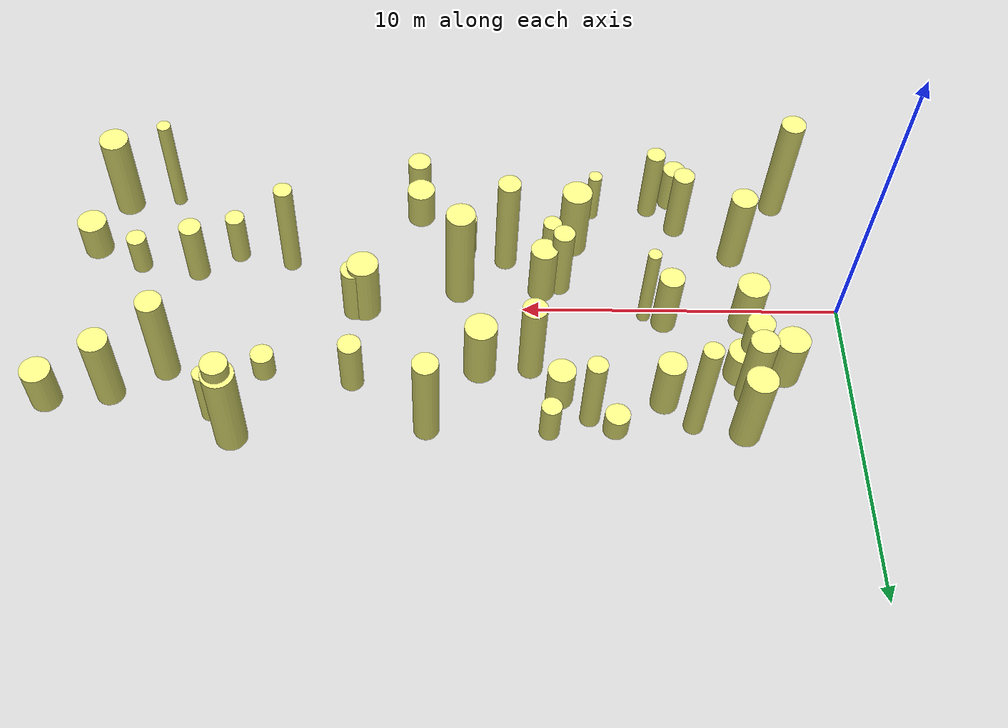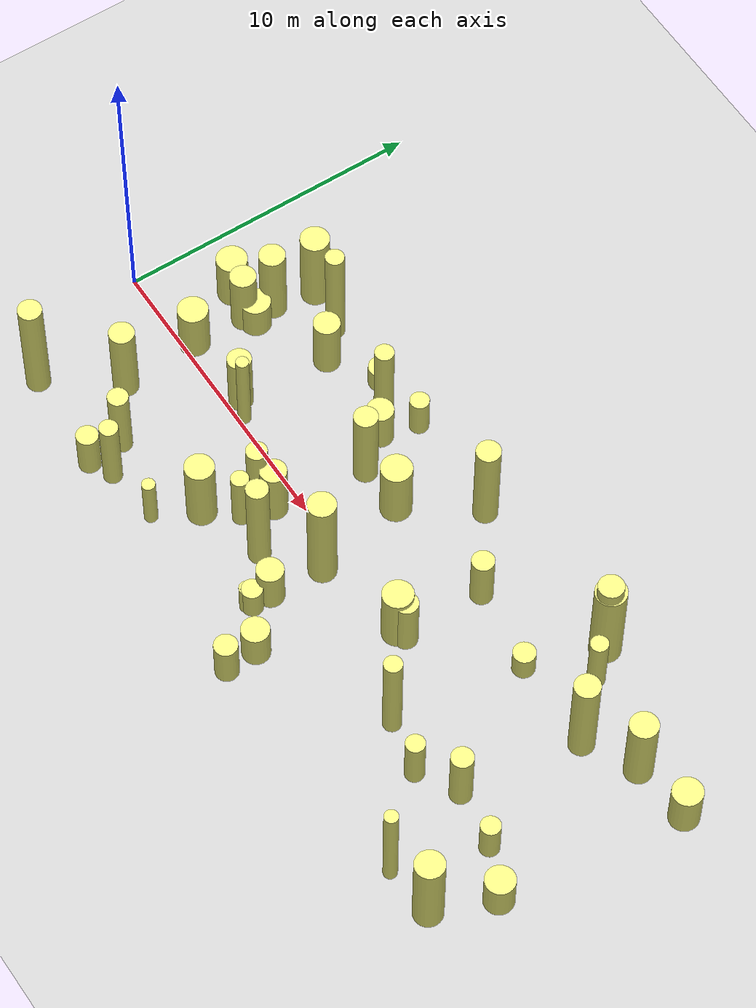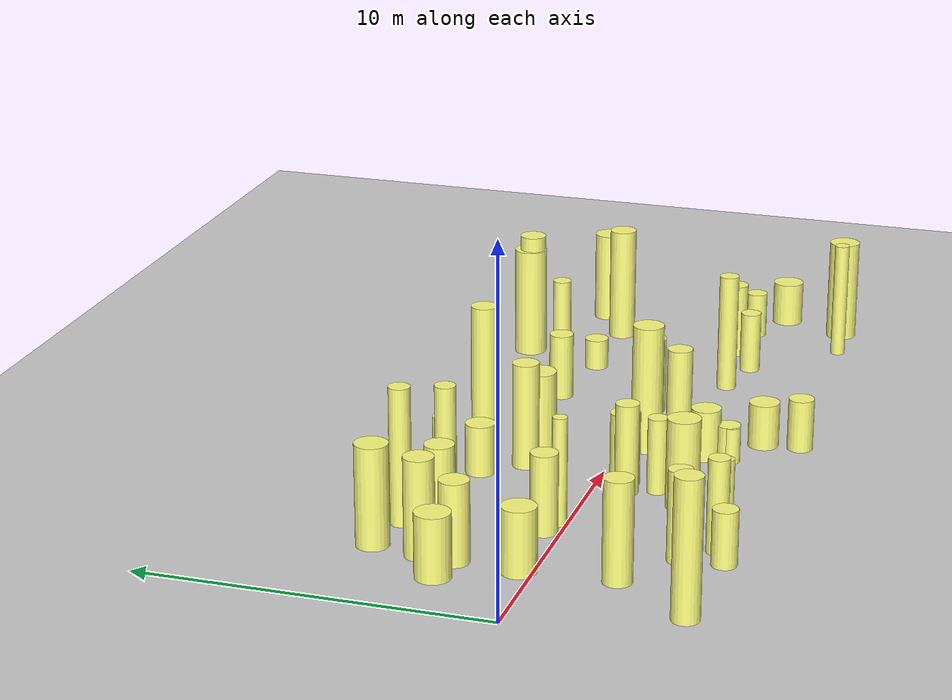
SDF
<sdf version="1.4">
 <world name="default">
  <include><uri>model://ground_plane</uri></include>
  <include><uri>model://sun</uri></include>
  <model name="forest">
   <static>true</static>
   <link name="cylinder1">
    <pose>8.066118839846212 4.0618754545201 1.4364087561074292 0 0 0</pose>
    <visual name="visual">
     <geometry>
      <cylinder><radius>0.30672156006113743</radius><length>2.8728175122148585</length></cylinder>
     </geometry>
     <material>
      <ambient>0.6 0.6 0.6 1</ambient>
      <diffuse>1 1 0.5 1</diffuse>
      <specular>0 0 0</specular>
      <emissive>0 0 0 1</emissive>
     </material>
    </visual>
    <collision name="collision">
     <geometry>
      <cylinder><radius>0.30672156006113743</radius><length>2.8728175122148585</length></cylinder>
     </geometry>
     <max_contacts>0</max_contacts>
    </collision>
   </link>
   <link name="cylinder3">
    <pose>3.170140923489946 -2.216576093013055 1.4581455485064332 0 0 0</pose>
    <visual name="visual">
     <geometry>
      <cylinder><radius>0.4053678825190724</radius><length>2.9162910970128664</length></cylinder>
     </geometry>
     <material>
      <ambient>0.6 0.6 0.6 1</ambient>
      <diffuse>1 1 0.5 1</diffuse>
      <specular>0 0 0</specular>
      <emissive>0 0 0 1</emissive>
     </material>
    </visual>
    <collision name="collision">
     <geometry>
      <cylinder><radius>0.4053678825190724</radius><length>2.9162910970128664</length></cylinder>
     </geometry>
     <max_contacts>0</max_contacts>
    </collision>
   </link>
   <link name="cylinder4">
    <pose>9.811674742614109 2.254812388897731 1.5549798884222428 0 0 0</pose>
    <visual name="visual">
     <geometry>
      <cylinder><radius>0.38145817483813893</radius><length>3.1099597768444855</length></cylinder>
     </geometry>
     <material>
      <ambient>0.6 0.6 0.6 1</ambient>
      <diffuse>1 1 0.5 1</diffuse>
      <specular>0 0 0</specular>
      <emissive>0 0 0 1</emissive>
     </material>
    </visual>
    <collision name="collision">
     <geometry>
      <cylinder><radius>0.38145817483813893</radius><length>3.1099597768444855</length></cylinder>
     </geometry>
     <max_contacts>0</max_contacts>
    </collision>
   </link>
   <link name="cylinder6">
    <pose>11.828730259959649 -3.240151185704457 0.5319828385935281 0 0 0</pose>
    <visual name="visual">
     <geometry>
      <cylinder><radius>0.2554180020215281</radius><length>1.0639656771870563</length></cylinder>
     </geometry>
     <material>
      <ambient>0.6 0.6 0.6 1</ambient>
      <diffuse>1 1 0.5 1</diffuse>
      <specular>0 0 0</specular>
      <emissive>0 0 0 1</emissive>
     </material>
    </visual>
    <collision name="collision">
     <geometry>
      <cylinder><radius>0.2554180020215281</radius><length>1.0639656771870563</length></cylinder>
     </geometry>
     <max_contacts>0</max_contacts>
    </collision>
   </link>
   <link name="cylinder11">
    <pose>15.0008586744622 -0.014582381675227296 1.1326069262630196 0 0 0</pose>
    <visual name="visual">
     <geometry>
      <cylinder><radius>0.4873311858263697</radius><length>2.2652138525260392</length></cylinder>
     </geometry>
     <material>
      <ambient>0.6 0.6 0.6 1</ambient>
      <diffuse>1 1 0.5 1</diffuse>
      <specular>0 0 0</specular>
      <emissive>0 0 0 1</emissive>
     </material>
    </visual>
    <collision name="collision">
     <geometry>
      <cylinder><radius>0.4873311858263697</radius><length>2.2652138525260392</length></cylinder>
     </geometry>
     <max_contacts>0</max_contacts>
    </collision>
   </link>
   <link name="cylinder12">
    <pose>5.735921058464587 -4.238797580088827 1.3454991109490377 0 0 0</pose>
    <visual name="visual">
     <geometry>
      <cylinder><radius>0.29776435941849366</radius><length>2.6909982218980755</length></cylinder>
     </geometry>
     <material>
      <ambient>0.6 0.6 0.6 1</ambient>
      <diffuse>1 1 0.5 1</diffuse>
      <specular>0 0 0</specular>
      <emissive>0 0 0 1</emissive>
     </material>
    </visual>
    <collision name="collision">
     <geometry>
      <cylinder><radius>0.29776435941849366</radius><length>2.6909982218980755</length></cylinder>
     </geometry>
     <max_contacts>0</max_contacts>
    </collision>
   </link>
   <link name="cylinder14">
    <pose>13.283649940602913 -3.8660855455151024 0.6704017006859668 0 0 0</pose>
    <visual name="visual">
     <geometry>
      <cylinder><radius>0.4441620345468562</radius><length>1.3408034013719337</length></cylinder>
     </geometry>
     <material>
      <ambient>0.6 0.6 0.6 1</ambient>
      <diffuse>1 1 0.5 1</diffuse>
      <specular>0 0 0</specular>
      <emissive>0 0 0 1</emissive>
     </material>
    </visual>
    <collision name="collision">
     <geometry>
      <cylinder><radius>0.4441620345468562</radius><length>1.3408034013719337</length></cylinder>
     </geometry>
     <max_contacts>0</max_contacts>
    </collision>
   </link>
   <link name="cylinder15">
    <pose>12.987337972857787 4.493687276730903 1.7412392908020857 0 0 0</pose>
    <visual name="visual">
     <geometry>
      <cylinder><radius>0.38889533113581276</radius><length>3.4824785816041715</length></cylinder>
     </geometry>
     <material>
      <ambient>0.6 0.6 0.6 1</ambient>
      <diffuse>1 1 0.5 1</diffuse>
      <specular>0 0 0</specular>
      <emissive>0 0 0 1</emissive>
     </material>
    </visual>
    <collision name="collision">
     <geometry>
      <cylinder><radius>0.38889533113581276</radius><length>3.4824785816041715</length></cylinder>
     </geometry>
     <max_contacts>0</max_contacts>
    </collision>
   </link>
   <link name="cylinder16">
    <pose>17.465234175828172 -1.820906253466669 1.7901525439202262 0 0 0</pose>
    <visual name="visual">
     <geometry>
      <cylinder><radius>0.28865827153307433</radius><length>3.5803050878404523</length></cylinder>
     </geometry>
     <material>
      <ambient>0.6 0.6 0.6 1</ambient>
      <diffuse>1 1 0.5 1</diffuse>
      <specular>0 0 0</specular>
      <emissive>0 0 0 1</emissive>
     </material>
    </visual>
    <collision name="collision">
     <geometry>
      <cylinder><radius>0.28865827153307433</radius><length>3.5803050878404523</length></cylinder>
     </geometry>
     <max_contacts>0</max_contacts>
    </collision>
   </link>
   <link name="cylinder18">
    <pose>18.850633381991997 4.760175011194956 1.896688940215597 0 0 0</pose>
    <visual name="visual">
     <geometry>
      <cylinder><radius>0.39927710213772893</radius><length>3.793377880431194</length></cylinder>
     </geometry>
     <material>
      <ambient>0.6 0.6 0.6 1</ambient>
      <diffuse>1 1 0.5 1</diffuse>
      <specular>0 0 0</specular>
      <emissive>0 0 0 1</emissive>
     </material>
    </visual>
    <collision name="collision">
     <geometry>
      <cylinder><radius>0.39927710213772893</radius><length>3.793377880431194</length></cylinder>
     </geometry>
     <max_contacts>0</max_contacts>
    </collision>
   </link>
   <link name="cylinder21">
    <pose>18.02866879839089 2.437116368702269 0.46491452243994297 0 0 0</pose>
    <visual name="visual">
     <geometry>
      <cylinder><radius>0.3569830298765556</radius><length>0.9298290448798859</length></cylinder>
     </geometry>
     <material>
      <ambient>0.6 0.6 0.6 1</ambient>
      <diffuse>1 1 0.5 1</diffuse>
      <specular>0 0 0</specular>
      <emissive>0 0 0 1</emissive>
     </material>
    </visual>
    <collision name="collision">
     <geometry>
      <cylinder><radius>0.3569830298765556</radius><length>0.9298290448798859</length></cylinder>
     </geometry>
     <max_contacts>0</max_contacts>
    </collision>
   </link>
   <link name="cylinder22">
    <pose>15.317636051968876 0.08138888489696594 1.0537577487184902 0 0 0</pose>
    <visual name="visual">
     <geometry>
      <cylinder><radius>0.3703493254064486</radius><length>2.1075154974369803</length></cylinder>
     </geometry>
     <material>
      <ambient>0.6 0.6 0.6 1</ambient>
      <diffuse>1 1 0.5 1</diffuse>
      <specular>0 0 0</specular>
      <emissive>0 0 0 1</emissive>
     </material>
    </visual>
    <collision name="collision">
     <geometry>
      <cylinder><radius>0.3703493254064486</radius><length>2.1075154974369803</length></cylinder>
     </geometry>
     <max_contacts>0</max_contacts>
    </collision>
   </link>
   <link name="cylinder25">
    <pose>11.895203911824616 -2.475094329204822 0.7576453206853451 0 0 0</pose>
    <visual name="visual">
     <geometry>
      <cylinder><radius>0.4295975941818696</radius><length>1.5152906413706901</length></cylinder>
     </geometry>
     <material>
      <ambient>0.6 0.6 0.6 1</ambient>
      <diffuse>1 1 0.5 1</diffuse>
      <specular>0 0 0</specular>
      <emissive>0 0 0 1</emissive>
     </material>
    </visual>
    <collision name="collision">
     <geometry>
      <cylinder><radius>0.4295975941818696</radius><length>1.5152906413706901</length></cylinder>
     </geometry>
     <max_contacts>0</max_contacts>
    </collision>
   </link>
   <link name="cylinder27">
    <pose>22.644880289418985 3.302533713791421 1.4079278390467205 0 0 0</pose>
    <visual name="visual">
     <geometry>
      <cylinder><radius>0.4429732584940284</radius><length>2.815855678093441</length></cylinder>
     </geometry>
     <material>
      <ambient>0.6 0.6 0.6 1</ambient>
      <diffuse>1 1 0.5 1</diffuse>
      <specular>0 0 0</specular>
      <emissive>0 0 0 1</emissive>
     </material>
    </visual>
    <collision name="collision">
     <geometry>
      <cylinder><radius>0.4429732584940284</radius><length>2.815855678093441</length></cylinder>
     </geometry>
     <max_contacts>0</max_contacts>
    </collision>
   </link>
   <link name="cylinder28">
    <pose>23.089459009583173 -4.303348235721679 1.5611952416324024 0 0 0</pose>
    <visual name="visual">
     <geometry>
      <cylinder><radius>0.45974052555895284</radius><length>3.122390483264805</length></cylinder>
     </geometry>
     <material>
      <ambient>0.6 0.6 0.6 1</ambient>
      <diffuse>1 1 0.5 1</diffuse>
      <specular>0 0 0</specular>
      <emissive>0 0 0 1</emissive>
     </material>
    </visual>
    <collision name="collision">
     <geometry>
      <cylinder><radius>0.45974052555895284</radius><length>3.122390483264805</length></cylinder>
     </geometry>
     <max_contacts>0</max_contacts>
    </collision>
   </link>
   <link name="cylinder29">
    <pose>2.9944841728109957 0.37837275598541176 0.9362592487458747 0 0 0</pose>
    <visual name="visual">
     <geometry>
      <cylinder><radius>0.48791380645112986</radius><length>1.8725184974917495</length></cylinder>
     </geometry>
     <material>
      <ambient>0.6 0.6 0.6 1</ambient>
      <diffuse>1 1 0.5 1</diffuse>
      <specular>0 0 0</specular>
      <emissive>0 0 0 1</emissive>
     </material>
    </visual>
    <collision name="collision">
     <geometry>
      <cylinder><radius>0.48791380645112986</radius><length>1.8725184974917495</length></cylinder>
     </geometry>
     <max_contacts>0</max_contacts>
    </collision>
   </link>
   <link name="cylinder30">
    <pose>8.803131889629185 -0.9608375173800159 1.3262918288286945 0 0 0</pose>
    <visual name="visual">
     <geometry>
      <cylinder><radius>0.3345717851911674</radius><length>2.652583657657389</length></cylinder>
     </geometry>
     <material>
      <ambient>0.6 0.6 0.6 1</ambient>
      <diffuse>1 1 0.5 1</diffuse>
      <specular>0 0 0</specular>
      <emissive>0 0 0 1</emissive>
     </material>
    </visual>
    <collision name="collision">
     <geometry>
      <cylinder><radius>0.3345717851911674</radius><length>2.652583657657389</length></cylinder>
     </geometry>
     <max_contacts>0</max_contacts>
    </collision>
   </link>
   <link name="cylinder33">
    <pose>5.778091470431633 3.467242111142605 1.0503981685899615 0 0 0</pose>
    <visual name="visual">
     <geometry>
      <cylinder><radius>0.4259204351675813</radius><length>2.100796337179923</length></cylinder>
     </geometry>
     <material>
      <ambient>0.6 0.6 0.6 1</ambient>
      <diffuse>1 1 0.5 1</diffuse>
      <specular>0 0 0</specular>
      <emissive>0 0 0 1</emissive>
     </material>
    </visual>
    <collision name="collision">
     <geometry>
      <cylinder><radius>0.4259204351675813</radius><length>2.100796337179923</length></cylinder>
     </geometry>
     <max_contacts>0</max_contacts>
    </collision>
   </link>
   <link name="cylinder34">
    <pose>8.325086826868251 -2.668230914443628 1.3018618476149957 0 0 0</pose>
    <visual name="visual">
     <geometry>
      <cylinder><radius>0.4680022684746793</radius><length>2.6037236952299914</length></cylinder>
     </geometry>
     <material>
      <ambient>0.6 0.6 0.6 1</ambient>
      <diffuse>1 1 0.5 1</diffuse>
      <specular>0 0 0</specular>
      <emissive>0 0 0 1</emissive>
     </material>
    </visual>
    <collision name="collision">
     <geometry>
      <cylinder><radius>0.4680022684746793</radius><length>2.6037236952299914</length></cylinder>
     </geometry>
     <max_contacts>0</max_contacts>
    </collision>
   </link>
   <link name="cylinder35">
    <pose>1.5702695720020579 -4.402047520439972 1.9614032190515487 0 0 0</pose>
    <visual name="visual">
     <geometry>
      <cylinder><radius>0.3827382010326946</radius><length>3.9228064381030974</length></cylinder>
     </geometry>
     <material>
      <ambient>0.6 0.6 0.6 1</ambient>
      <diffuse>1 1 0.5 1</diffuse>
      <specular>0 0 0</specular>
      <emissive>0 0 0 1</emissive>
     </material>
    </visual>
    <collision name="collision">
     <geometry>
      <cylinder><radius>0.3827382010326946</radius><length>3.9228064381030974</length></cylinder>
     </geometry>
     <max_contacts>0</max_contacts>
    </collision>
   </link>
   <link name="cylinder36">
    <pose>23.86629952842967 -2.405696458742531 0.6725989420630607 0 0 0</pose>
    <visual name="visual">
     <geometry>
      <cylinder><radius>0.4671781323828896</radius><length>1.3451978841261214</length></cylinder>
     </geometry>
     <material>
      <ambient>0.6 0.6 0.6 1</ambient>
      <diffuse>1 1 0.5 1</diffuse>
      <specular>0 0 0</specular>
      <emissive>0 0 0 1</emissive>
     </material>
    </visual>
    <collision name="collision">
     <geometry>
      <cylinder><radius>0.4671781323828896</radius><length>1.3451978841261214</length></cylinder>
     </geometry>
     <max_contacts>0</max_contacts>
    </collision>
   </link>
   <link name="cylinder39">
    <pose>13.354917076665004 -4.925235537709143 0.7724096318504798 0 0 0</pose>
    <visual name="visual">
     <geometry>
      <cylinder><radius>0.37187433411628046</radius><length>1.5448192637009597</length></cylinder>
     </geometry>
     <material>
      <ambient>0.6 0.6 0.6 1</ambient>
      <diffuse>1 1 0.5 1</diffuse>
      <specular>0 0 0</specular>
      <emissive>0 0 0 1</emissive>
     </material>
    </visual>
    <collision name="collision">
     <geometry>
      <cylinder><radius>0.37187433411628046</radius><length>1.5448192637009597</length></cylinder>
     </geometry>
     <max_contacts>0</max_contacts>
    </collision>
   </link>
   <link name="cylinder40">
    <pose>3.4354026957642674 4.5520370584746175 1.4604777693836493 0 0 0</pose>
    <visual name="visual">
     <geometry>
      <cylinder><radius>0.4684329063424866</radius><length>2.9209555387672985</length></cylinder>
     </geometry>
     <material>
      <ambient>0.6 0.6 0.6 1</ambient>
      <diffuse>1 1 0.5 1</diffuse>
      <specular>0 0 0</specular>
      <emissive>0 0 0 1</emissive>
     </material>
    </visual>
    <collision name="collision">
     <geometry>
      <cylinder><radius>0.4684329063424866</radius><length>2.9209555387672985</length></cylinder>
     </geometry>
     <max_contacts>0</max_contacts>
    </collision>
   </link>
   <link name="cylinder42">
    <pose>6.167972155496681 0.2064080756497333 1.56071031860152 0 0 0</pose>
    <visual name="visual">
     <geometry>
      <cylinder><radius>0.20504070258508728</radius><length>3.12142063720304</length></cylinder>
     </geometry>
     <material>
      <ambient>0.6 0.6 0.6 1</ambient>
      <diffuse>1 1 0.5 1</diffuse>
      <specular>0 0 0</specular>
      <emissive>0 0 0 1</emissive>
     </material>
    </visual>
    <collision name="collision">
     <geometry>
      <cylinder><radius>0.20504070258508728</radius><length>3.12142063720304</length></cylinder>
     </geometry>
     <max_contacts>0</max_contacts>
    </collision>
   </link>
   <link name="cylinder45">
    <pose>12.004390138690482 -0.7123755683639166 1.8909977528873547 0 0 0</pose>
    <visual name="visual">
     <geometry>
      <cylinder><radius>0.4477335801210177</radius><length>3.7819955057747094</length></cylinder>
     </geometry>
     <material>
      <ambient>0.6 0.6 0.6 1</ambient>
      <diffuse>1 1 0.5 1</diffuse>
      <specular>0 0 0</specular>
      <emissive>0 0 0 1</emissive>
     </material>
    </visual>
    <collision name="collision">
     <geometry>
      <cylinder><radius>0.4477335801210177</radius><length>3.7819955057747094</length></cylinder>
     </geometry>
     <max_contacts>0</max_contacts>
    </collision>
   </link>
   <link name="cylinder46">
    <pose>2.026135868582031 2.3939443775527014 0.9225425791103101 0 0 0</pose>
    <visual name="visual">
     <geometry>
      <cylinder><radius>0.4975333186364069</radius><length>1.8450851582206202</length></cylinder>
     </geometry>
     <material>
      <ambient>0.6 0.6 0.6 1</ambient>
      <diffuse>1 1 0.5 1</diffuse>
      <specular>0 0 0</specular>
      <emissive>0 0 0 1</emissive>
     </material>
    </visual>
    <collision name="collision">
     <geometry>
      <cylinder><radius>0.4975333186364069</radius><length>1.8450851582206202</length></cylinder>
     </geometry>
     <max_contacts>0</max_contacts>
    </collision>
   </link>
   <link name="cylinder47">
    <pose>3.070877339769396 2.156356076204215 1.1729494905168913 0 0 0</pose>
    <visual name="visual">
     <geometry>
      <cylinder><radius>0.41773534468563417</radius><length>2.3458989810337827</length></cylinder>
     </geometry>
     <material>
      <ambient>0.6 0.6 0.6 1</ambient>
      <diffuse>1 1 0.5 1</diffuse>
      <specular>0 0 0</specular>
      <emissive>0 0 0 1</emissive>
     </material>
    </visual>
    <collision name="collision">
     <geometry>
      <cylinder><radius>0.41773534468563417</radius><length>2.3458989810337827</length></cylinder>
     </geometry>
     <max_contacts>0</max_contacts>
    </collision>
   </link>
   <link name="cylinder50">
    <pose>4.898978094734169 -3.4131946261780977 1.302396155600394 0 0 0</pose>
    <visual name="visual">
     <geometry>
      <cylinder><radius>0.3321295872910309</radius><length>2.604792311200788</length></cylinder>
     </geometry>
     <material>
      <ambient>0.6 0.6 0.6 1</ambient>
      <diffuse>1 1 0.5 1</diffuse>
      <specular>0 0 0</specular>
      <emissive>0 0 0 1</emissive>
     </material>
    </visual>
    <collision name="collision">
     <geometry>
      <cylinder><radius>0.3321295872910309</radius><length>2.604792311200788</length></cylinder>
     </geometry>
     <max_contacts>0</max_contacts>
    </collision>
   </link>
   <link name="cylinder52">
    <pose>11.380908579508443 2.324919556639858 1.1375491714978354 0 0 0</pose>
    <visual name="visual">
     <geometry>
      <cylinder><radius>0.49752402711802485</radius><length>2.275098342995671</length></cylinder>
     </geometry>
     <material>
      <ambient>0.6 0.6 0.6 1</ambient>
      <diffuse>1 1 0.5 1</diffuse>
      <specular>0 0 0</specular>
      <emissive>0 0 0 1</emissive>
     </material>
    </visual>
    <collision name="collision">
     <geometry>
      <cylinder><radius>0.49752402711802485</radius><length>2.275098342995671</length></cylinder>
     </geometry>
     <max_contacts>0</max_contacts>
    </collision>
   </link>
   <link name="cylinder53">
    <pose>7.306784133140212 4.43199189034911 0.4163177386689213 0 0 0</pose>
    <visual name="visual">
     <geometry>
      <cylinder><radius>0.38142704160027086</radius><length>0.8326354773378426</length></cylinder>
     </geometry>
     <material>
      <ambient>0.6 0.6 0.6 1</ambient>
      <diffuse>1 1 0.5 1</diffuse>
      <specular>0 0 0</specular>
      <emissive>0 0 0 1</emissive>
     </material>
    </visual>
    <collision name="collision">
     <geometry>
      <cylinder><radius>0.38142704160027086</radius><length>0.8326354773378426</length></cylinder>
     </geometry>
     <max_contacts>0</max_contacts>
    </collision>
   </link>
   <link name="cylinder54">
    <pose>4.964270226070756 4.297833036703905 1.9822701510709995 0 0 0</pose>
    <visual name="visual">
     <geometry>
      <cylinder><radius>0.30186791827440784</radius><length>3.964540302141999</length></cylinder>
     </geometry>
     <material>
      <ambient>0.6 0.6 0.6 1</ambient>
      <diffuse>1 1 0.5 1</diffuse>
      <specular>0 0 0</specular>
      <emissive>0 0 0 1</emissive>
     </material>
    </visual>
    <collision name="collision">
     <geometry>
      <cylinder><radius>0.30186791827440784</radius><length>3.964540302141999</length></cylinder>
     </geometry>
     <max_contacts>0</max_contacts>
    </collision>
   </link>
   <link name="cylinder61">
    <pose>9.300258102587968 4.544746572592958 0.7082992245411488 0 0 0</pose>
    <visual name="visual">
     <geometry>
      <cylinder><radius>0.3100024295646805</radius><length>1.4165984490822976</length></cylinder>
     </geometry>
     <material>
      <ambient>0.6 0.6 0.6 1</ambient>
      <diffuse>1 1 0.5 1</diffuse>
      <specular>0 0 0</specular>
      <emissive>0 0 0 1</emissive>
     </material>
    </visual>
    <collision name="collision">
     <geometry>
      <cylinder><radius>0.3100024295646805</radius><length>1.4165984490822976</length></cylinder>
     </geometry>
     <max_contacts>0</max_contacts>
    </collision>
   </link>
   <link name="cylinder65">
    <pose>9.386807925659838 -0.7572756756143999 1.0683993044330191 0 0 0</pose>
    <visual name="visual">
     <geometry>
      <cylinder><radius>0.4232124306276845</radius><length>2.1367986088660382</length></cylinder>
     </geometry>
     <material>
      <ambient>0.6 0.6 0.6 1</ambient>
      <diffuse>1 1 0.5 1</diffuse>
      <specular>0 0 0</specular>
      <emissive>0 0 0 1</emissive>
     </material>
    </visual>
    <collision name="collision">
     <geometry>
      <cylinder><radius>0.4232124306276845</radius><length>2.1367986088660382</length></cylinder>
     </geometry>
     <max_contacts>0</max_contacts>
    </collision>
   </link>
   <link name="cylinder68">
    <pose>15.292190969463903 2.792718023084327 0.9945920541978391 0 0 0</pose>
    <visual name="visual">
     <geometry>
      <cylinder><radius>0.3575306236126956</radius><length>1.9891841083956783</length></cylinder>
     </geometry>
     <material>
      <ambient>0.6 0.6 0.6 1</ambient>
      <diffuse>1 1 0.5 1</diffuse>
      <specular>0 0 0</specular>
      <emissive>0 0 0 1</emissive>
     </material>
    </visual>
    <collision name="collision">
     <geometry>
      <cylinder><radius>0.3575306236126956</radius><length>1.9891841083956783</length></cylinder>
     </geometry>
     <max_contacts>0</max_contacts>
    </collision>
   </link>
   <link name="cylinder70">
    <pose>10.51392280276955 -1.997277216749601 1.871228407920733 0 0 0</pose>
    <visual name="visual">
     <geometry><cylinder><radius>0.352332976588126</radius><length>3.742456815841466</length></cylinder></geometry>
     <material>
      <ambient>0.6 0.6 0.6 1</ambient>
      <diffuse>1 1 0.5 1</diffuse>
      <specular>0 0 0</specular>
      <emissive>0 0 0 1</emissive>
     </material>
    </visual>
    <collision name="collision">
     <geometry><cylinder><radius>0.352332976588126</radius><length>3.742456815841466</length></cylinder></geometry>
     <max_contacts>0</max_contacts>
    </collision>
   </link>
   <link name="cylinder73">
    <pose>21.03212217956603 2.4213368996082814 1.757705054136851 0 0 0</pose>
    <visual name="visual">
     <geometry>
      <cylinder><radius>0.4041219988410888</radius><length>3.515410108273702</length></cylinder>
     </geometry>
     <material>
      <ambient>0.6 0.6 0.6 1</ambient>
      <diffuse>1 1 0.5 1</diffuse>
      <specular>0 0 0</specular>
      <emissive>0 0 0 1</emissive>
     </material>
    </visual>
    <collision name="collision">
     <geometry>
      <cylinder><radius>0.4041219988410888</radius><length>3.515410108273702</length></cylinder>
     </geometry>
     <max_contacts>0</max_contacts>
    </collision>
   </link>
   <link name="cylinder75">
    <pose>22.337507721014212 -1.6952213403606264 0.7011912334074624 0 0 0</pose>
    <visual name="visual">
     <geometry>
      <cylinder><radius>0.3132549554099388</radius><length>1.4023824668149247</length></cylinder>
     </geometry>
     <material>
      <ambient>0.6 0.6 0.6 1</ambient>
      <diffuse>1 1 0.5 1</diffuse>
      <specular>0 0 0</specular>
      <emissive>0 0 0 1</emissive>
     </material>
    </visual>
    <collision name="collision">
     <geometry>
      <cylinder><radius>0.3132549554099388</radius><length>1.4023824668149247</length></cylinder>
     </geometry>
     <max_contacts>0</max_contacts>
    </collision>
   </link>
   <link name="cylinder76">
    <pose>3.387065336416928 2.383229401599314 0.6068727079940768 0 0 0</pose>
    <visual name="visual">
     <geometry>
      <cylinder><radius>0.4826527134865015</radius><length>1.2137454159881536</length></cylinder>
     </geometry>
     <material>
      <ambient>0.6 0.6 0.6 1</ambient>
      <diffuse>1 1 0.5 1</diffuse>
      <specular>0 0 0</specular>
      <emissive>0 0 0 1</emissive>
     </material>
    </visual>
    <collision name="collision">
     <geometry>
      <cylinder><radius>0.4826527134865015</radius><length>1.2137454159881536</length></cylinder>
     </geometry>
     <max_contacts>0</max_contacts>
    </collision>
   </link>
   <link name="cylinder77">
    <pose>20.464420189815044 -1.426448462782235 1.138171031837899 0 0 0</pose>
    <visual name="visual">
     <geometry>
      <cylinder><radius>0.34946850364120136</radius><length>2.276342063675798</length></cylinder>
     </geometry>
     <material>
      <ambient>0.6 0.6 0.6 1</ambient>
      <diffuse>1 1 0.5 1</diffuse>
      <specular>0 0 0</specular>
      <emissive>0 0 0 1</emissive>
     </material>
    </visual>
    <collision name="collision">
     <geometry>
      <cylinder><radius>0.34946850364120136</radius><length>2.276342063675798</length></cylinder>
     </geometry>
     <max_contacts>0</max_contacts>
    </collision>
   </link>
   <link name="cylinder78">
    <pose>21.44891997196971 -4.5084033554065766 1.774514235387425 0 0 0</pose>
    <visual name="visual">
     <geometry>
      <cylinder><radius>0.21917497779036538</radius><length>3.54902847077485</length></cylinder>
     </geometry>
     <material>
      <ambient>0.6 0.6 0.6 1</ambient>
      <diffuse>1 1 0.5 1</diffuse>
      <specular>0 0 0</specular>
      <emissive>0 0 0 1</emissive>
     </material>
    </visual>
    <collision name="collision">
     <geometry>
      <cylinder><radius>0.21917497779036538</radius><length>3.54902847077485</length></cylinder>
     </geometry>
     <max_contacts>0</max_contacts>
    </collision>
   </link>
   <link name="cylinder79">
    <pose>19.51660128124513 3.9945663471197808 1.0830020040152881 0 0 0</pose>
    <visual name="visual">
     <geometry>
      <cylinder><radius>0.2814238461275613</radius><length>2.1660040080305762</length></cylinder>
     </geometry>
     <material>
      <ambient>0.6 0.6 0.6 1</ambient>
      <diffuse>1 1 0.5 1</diffuse>
      <specular>0 0 0</specular>
      <emissive>0 0 0 1</emissive>
     </material>
    </visual>
    <collision name="collision">
     <geometry>
      <cylinder><radius>0.2814238461275613</radius><length>2.1660040080305762</length></cylinder>
     </geometry>
     <max_contacts>0</max_contacts>
    </collision>
   </link>
   <link name="cylinder80">
    <pose>7.616857382206135 -4.034000780166636 0.935369388952907 0 0 0</pose>
    <visual name="visual">
     <geometry>
      <cylinder><radius>0.21486045110978616</radius><length>1.870738777905814</length></cylinder>
     </geometry>
     <material>
      <ambient>0.6 0.6 0.6 1</ambient>
      <diffuse>1 1 0.5 1</diffuse>
      <specular>0 0 0</specular>
      <emissive>0 0 0 1</emissive>
     </material>
    </visual>
    <collision name="collision">
     <geometry>
      <cylinder><radius>0.21486045110978616</radius><length>1.870738777905814</length></cylinder>
     </geometry>
     <max_contacts>0</max_contacts>
    </collision>
   </link>
   <link name="cylinder81">
    <pose>5.5600706306105465 0.4582310168960122 1.1579896931426288 0 0 0</pose>
    <visual name="visual">
     <geometry>
      <cylinder><radius>0.3841271193263165</radius><length>2.3159793862852576</length></cylinder>
     </geometry>
     <material>
      <ambient>0.6 0.6 0.6 1</ambient>
      <diffuse>1 1 0.5 1</diffuse>
      <specular>0 0 0</specular>
      <emissive>0 0 0 1</emissive>
     </material>
    </visual>
    <collision name="collision">
     <geometry>
      <cylinder><radius>0.3841271193263165</radius><length>2.3159793862852576</length></cylinder>
     </geometry>
     <max_contacts>0</max_contacts>
    </collision>
   </link>
   <link name="cylinder82">
    <pose>24.580315027619918 3.5416605689808396 0.8008936932971196 0 0 0</pose>
    <visual name="visual">
     <geometry>
      <cylinder><radius>0.47385883994414396</radius><length>1.6017873865942391</length></cylinder>
     </geometry>
     <material>
      <ambient>0.6 0.6 0.6 1</ambient>
      <diffuse>1 1 0.5 1</diffuse>
      <specular>0 0 0</specular>
      <emissive>0 0 0 1</emissive>
     </material>
    </visual>
    <collision name="collision">
     <geometry>
      <cylinder><radius>0.47385883994414396</radius><length>1.6017873865942391</length></cylinder>
     </geometry>
     <max_contacts>0</max_contacts>
    </collision>
   </link>
   <link name="cylinder83">
    <pose>11.932549335061104 -3.13470551197602 0.5345437008890773 0 0 0</pose>
    <visual name="visual">
     <geometry>
      <cylinder><radius>0.33534867875537855</radius><length>1.0690874017781546</length></cylinder>
     </geometry>
     <material>
      <ambient>0.6 0.6 0.6 1</ambient>
      <diffuse>1 1 0.5 1</diffuse>
      <specular>0 0 0</specular>
      <emissive>0 0 0 1</emissive>
     </material>
    </visual>
    <collision name="collision">
     <geometry>
      <cylinder><radius>0.33534867875537855</radius><length>1.0690874017781546</length></cylinder>
     </geometry>
     <max_contacts>0</max_contacts>
    </collision>
   </link>
   <link name="cylinder84">
    <pose>19.181400107504025 -2.1724720740393555 0.9264016157444582 0 0 0</pose>
    <visual name="visual">
     <geometry>
      <cylinder><radius>0.3048782888421775</radius><length>1.8528032314889165</length></cylinder>
     </geometry>
     <material>
      <ambient>0.6 0.6 0.6 1</ambient>
      <diffuse>1 1 0.5 1</diffuse>
      <specular>0 0 0</specular>
      <emissive>0 0 0 1</emissive>
     </material>
    </visual>
    <collision name="collision">
     <geometry>
      <cylinder><radius>0.3048782888421775</radius><length>1.8528032314889165</length></cylinder>
     </geometry>
     <max_contacts>0</max_contacts>
    </collision>
   </link>
   <link name="cylinder85">
    <pose>4.988031320876335 -4.605055567591832 0.8015297485247815 0 0 0</pose>
    <visual name="visual">
     <geometry>
      <cylinder><radius>0.35502123499751226</radius><length>1.603059497049563</length></cylinder>
     </geometry>
     <material>
      <ambient>0.6 0.6 0.6 1</ambient>
      <diffuse>1 1 0.5 1</diffuse>
      <specular>0 0 0</specular>
      <emissive>0 0 0 1</emissive>
     </material>
    </visual>
    <collision name="collision">
     <geometry>
      <cylinder><radius>0.35502123499751226</radius><length>1.603059497049563</length></cylinder>
     </geometry>
     <max_contacts>0</max_contacts>
    </collision>
   </link>
   <link name="cylinder94">
    <pose>9.1129213076768 -1.7545907330374866 1.1045749260669333 0 0 0</pose>
    <visual name="visual">
     <geometry>
      <cylinder><radius>0.28610057760462315</radius><length>2.2091498521338666</length></cylinder>
     </geometry>
     <material>
      <ambient>0.6 0.6 0.6 1</ambient>
      <diffuse>1 1 0.5 1</diffuse>
      <specular>0 0 0</specular>
      <emissive>0 0 0 1</emissive>
     </material>
    </visual>
    <collision name="collision">
     <geometry>
      <cylinder><radius>0.28610057760462315</radius><length>2.2091498521338666</length></cylinder>
     </geometry>
     <max_contacts>0</max_contacts>
    </collision>
   </link>
   <link name="cylinder95">
    <pose>18.811908720557987 4.816690485531897 1.6774704814587738 0 0 0</pose>
    <visual name="visual">
     <geometry>
      <cylinder><radius>0.49303019373057166</radius><length>3.3549409629175475</length></cylinder>
     </geometry>
     <material>
      <ambient>0.6 0.6 0.6 1</ambient>
      <diffuse>1 1 0.5 1</diffuse>
      <specular>0 0 0</specular>
      <emissive>0 0 0 1</emissive>
     </material>
    </visual>
    <collision name="collision">
     <geometry>
      <cylinder><radius>0.49303019373057166</radius><length>3.3549409629175475</length></cylinder>
     </geometry>
     <max_contacts>0</max_contacts>
    </collision>
   </link>
   <link name="cylinder98">
    <pose>3.1765316845083547 3.157959775695746 1.4120312350884752 0 0 0</pose>
    <visual name="visual">
     <geometry>
      <cylinder><radius>0.4211007439841905</radius><length>2.8240624701769503</length></cylinder>
     </geometry>
     <material>
      <ambient>0.6 0.6 0.6 1</ambient>
      <diffuse>1 1 0.5 1</diffuse>
      <specular>0 0 0</specular>
      <emissive>0 0 0 1</emissive>
     </material>
    </visual>
    <collision name="collision">
     <geometry>
      <cylinder><radius>0.4211007439841905</radius><length>2.8240624701769503</length></cylinder>
     </geometry>
     <max_contacts>0</max_contacts>
    </collision>
   </link>
   <link name="cylinder99">
    <pose>8.964635094830363 3.335659251735372 0.7460575979009751 0 0 0</pose>
    <visual name="visual">
     <geometry>
      <cylinder><radius>0.4260127072582016</radius><length>1.4921151958019503</length></cylinder>
     </geometry>
     <material>
      <ambient>0.6 0.6 0.6 1</ambient>
      <diffuse>1 1 0.5 1</diffuse>
      <specular>0 0 0</specular>
      <emissive>0 0 0 1</emissive>
     </material>
    </visual>
    <collision name="collision">
     <geometry>
      <cylinder><radius>0.4260127072582016</radius><length>1.4921151958019503</length></cylinder>
     </geometry>
     <max_contacts>0</max_contacts>
    </collision>
   </link>
  </model>
 </world>
</sdf>
